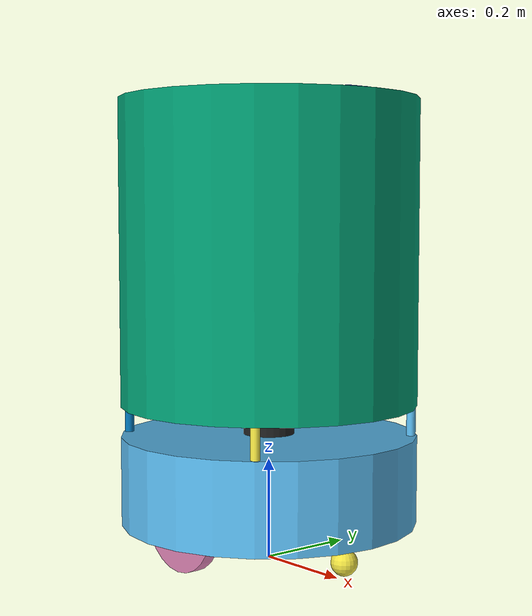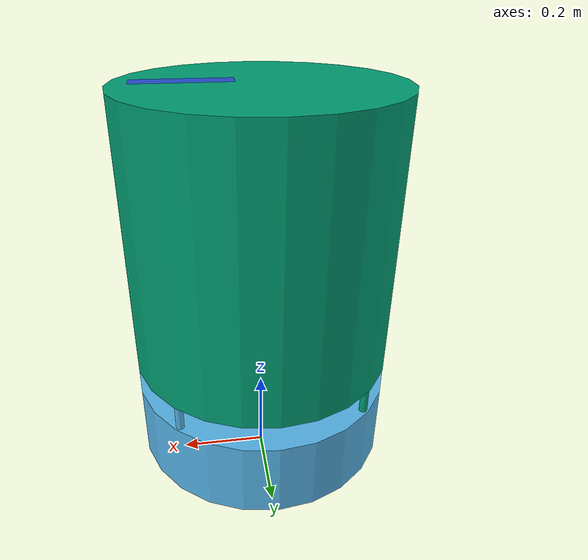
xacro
<?xml version='1.0'?>

<robot name="myrobot" xmlns:xacro="http://www.ros.org/wiki/xacro">

  <xacro:include filename="$(find karbot_description)/urdf/materials.xacro" />
  <xacro:include filename="$(find karbot_description)/urdf/karbot.gazebo" />
  <xacro:include filename="$(find karbot_description)/urdf/macros.xacro" />

<link name="base_footprint"/>

<joint name="base_joint" type="fixed">
    <parent link="base_footprint"/>
    <child link="base_link" />
    <origin xyz="0 0 0.010" rpy="0 0 0"/>
  </joint>

  <link name="base_link">
    <visual>
      <geometry>
        <cylinder length="0.176" radius="0.295051"/>
      </geometry>
      <origin rpy="0 0 0" xyz="0 0 0.153988"/>
    </visual>

    <collision name= "collison_base_link">
      <origin rpy="0 0 0" xyz="0 0 0.153988"/>
      <geometry>
        <cylinder length="0.176" radius="0.295051"/>
      </geometry>
    </collision>
    <inertial>
      <mass value="1"/>
      <origin rpy="0 0 0" xyz="0 0 0.153988"/>
      <xacro:cylinder_inertia mass="1" r="0.295051" l="0.176" />
    </inertial>
  </link>

  <link name="upper_chassis">
    <visual>
      <geometry>
        <cylinder length="0.601382" radius="0.295051"/>
      </geometry>
      <origin rpy="0 0 0" xyz="0 0 0"/>
    </visual>

    <collision name = "collision_upper_chassis">
      <geometry>
        <cylinder length="0.601382" radius="0.295051"/>
      </geometry>
    </collision>
  </link>

  <joint name="upper_chassis_hinge" type="fixed">
    <parent link="base_link"/>
    <child link="upper_chassis"/>
    <origin rpy="0 0 0" xyz="0 0 0.602679"/>
  </joint>

  <link name="front_caster">
    <visual>
      <geometry>
        <sphere radius="0.025925"/>
      </geometry>
      <origin rpy="0 0 0" xyz="0 0 0"/>
    </visual>

    <collision>
      <geometry>
        <sphere radius="0.025925"/>
      </geometry>
      <surface>
        <friction>
          <ode>
            <mu>0</mu>
            <mu2>0</mu2>
            <slip1>1.0</slip1>
            <slip2>1.0</slip2>
          </ode>
        </friction>
      </surface>
    </collision>
    <inertial>
      <mass value="0.2"/>
      <inertia ixx="0.004481" ixy="0.0" ixz="0.0" iyy="0.004481" iyz="0.0" izz="0.004481"/>
    </inertial>
  </link>

  <joint name="front_caster_hinge" type="fixed">
    <parent link="base_link"/>
    <child link="front_caster"/>
    <origin xyz="0.220488 0 0.025"/>
  </joint>

  <link name="rear_caster">
    <visual>
      <geometry>
        <sphere radius="0.026925"/>
      </geometry>
      <origin rpy="0 0 0" xyz="0 0 0"/>
    </visual>

    <collision>
      <geometry>
        <sphere radius="0.025925"/>
      </geometry>
      <surface>
        <friction>
          <ode>
            <mu>0</mu>
            <mu2>0</mu2>
            <slip1>1.0</slip1>
            <slip2>1.0</slip2>
          </ode>
        </friction>
      </surface>
    </collision>
    <inertial>
      <mass value="0.2"/>
      <inertia ixx="0.001" ixy="0.0" ixz="0.0" iyy="0.001" iyz="0.0" izz="0.001"/>
    </inertial>
  </link>

  <joint name="rear_caster_hinge" type="fixed">
    <parent link="base_link"/>
    <child link="rear_caster"/>
    <origin xyz="-0.220488 0 0.026925"/>
  </joint>

  <link name="left_wheel">
    <visual>
      <geometry>
        <cylinder length=".025400" radius="0.102173"/>
      </geometry>
      <origin rpy="0 1.5707 1.5707" xyz="0 0 0"/>
    </visual>

    <collision>
      <origin rpy="0 1.5707 1.5707" xyz="0 0 0"/>
      <geometry>
        <cylinder length=".025400" radius="0.102173"/>
      </geometry>
    </collision>
    <inertial>
      <mass value="0.3"/>
      <xacro:cylinder_inertia mass="0.3" r="0.102173" l="0.0254" />
    </inertial>
  </link>

  <joint name="left_wheel_hinge" type="continuous">
    <parent link="base_link"/>
    <child link="left_wheel"/>
     <origin rpy="0 0 0" xyz="0 0.213950 0.102173"/>
     <axis xyz="0 1 0"/>
     <limit effort="10000" velocity="1000"/>
     <joint_properties damping="1.0" friction="1.0"/>
  </joint>

  <link name="right_wheel">
    <visual>
      <geometry>
        <cylinder length=".025400" radius="0.102173"/>
      </geometry>
      <origin rpy="0 1.5707 1.5707" xyz="0 0 0"/>
    </visual>

    <collision>
      <origin rpy="0 1.5707 1.5707" xyz="0 0 0"/>
      <geometry>
        <cylinder length=".025400" radius="0.102173"/>
      </geometry>
    </collision>
    <inertial>
      <mass value="0.3"/>
      <xacro:cylinder_inertia mass="0.3" r="0.102173" l="0.0254" />
    </inertial>
  </link>

  <joint name="right_wheel_hinge" type="continuous">
    <parent link="base_link"/>
    <child link="right_wheel"/>
     <origin rpy="0 0 0" xyz="0 -0.213950 0.102173"/>
    <axis xyz="0 1 0"/>
    <limit effort="10000" velocity="1000"/>
    <joint_properties damping="1.0" friction="1.0"/>
  </joint>

  <link name="base_scan">
    <visual>
      <geometry>
        <cylinder length="0.055" radius="0.0508"/>
      </geometry>
      <origin rpy="0 0 0" xyz="0 0 0"/>
    </visual>

    <collision>
      <geometry>
        <cylinder length="0.055" radius="0.0508"/>
      </geometry>
    </collision>
    <inertial>
      <mass value="0.2"/>
      <xacro:cylinder_inertia mass="0.2" r="0.0508" l="0.055" />
    </inertial>
  </link>

  <joint name="scan_joint" type="fixed">
    <parent link="base_link"/>
    <child link="base_scan"/>
    <origin xyz="0 0 0.269488"/>
  </joint>

  <link name="arrow">
    <visual>
      <geometry>
       <box size="0.2 0.05 0.000010"/>
      </geometry>
      <origin rpy="0 0 0" xyz="0 0 0"/>
    <material name="blue"/>
    </visual>

  </link>

  <joint name="arrow_hinge" type="fixed">
    <parent link="base_link"/>
    <child link="arrow"/>
    <origin rpy="0 0 0" xyz="0.15 0 0.91"/>
  </joint>

<xacro:macro name="front_pillars" params="prefix reflect">
    <link name="front_${prefix}_pillar">
        <visual>
            <geometry>
             <cylinder length="0.075" radius="0.009"/>
            </geometry>
            <origin xyz="0 0 0" rpy="0 0 0"/>
        </visual>
        <collision>
            <geometry>
             <cylinder length="0.075" radius="0.009"/>
            </geometry>
            <origin xyz="0 0 0" rpy="0 0 0"/>
        </collision>
    </link>

   <joint name="front_${prefix}_pillar_hinge" type="fixed">
       <parent link="base_link"/>
       <child link="front_${prefix}_pillar"/>
       <origin xyz="${reflect*0.20} 0.20 0.269488" />
    </joint>
</xacro:macro>
<xacro:front_pillars prefix="right" reflect="1" />
<xacro:front_pillars prefix="left" reflect="-1" />

<xacro:macro name="rear_pillars" params="prefix reflect">
    <link name="rear_${prefix}_pillar">
        <visual>
            <geometry>
             <cylinder length="0.075" radius="0.009"/>
            </geometry>
            <origin xyz="0 0 0" rpy="0 0 0"/>
        </visual>
        <collision>
            <geometry>
             <cylinder length="0.075" radius="0.009"/>
            </geometry>
            <origin xyz="0 0 0" rpy="0 0 0"/>
        </collision>
    </link>

   <joint name="rear_${prefix}_pillar_hinge" type="fixed">
       <parent link="base_link"/>
       <child link="rear_${prefix}_pillar"/>
       <origin xyz="${reflect*0.20} -0.20 0.269488" />
    </joint>
</xacro:macro>
<xacro:rear_pillars prefix="right" reflect="1" />
<xacro:rear_pillars prefix="left" reflect="-1" />

</robot>

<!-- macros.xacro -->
<robot>
    <macro name="link_wheel" params="name">
        <link name="${name}">
            <inertial>
              <mass value="0.2"/>
              <origin rpy="0 1.5707 1.5707" xyz="0 0 0"/>
              <inertia ixx="0.000526666666667" ixy="0" ixz="0" iyy="0.000526666666667" iyz="0" izz="0.001"/>
            </inertial>
            <collision name="link_right_wheel_collision">
              <origin rpy="0 1.5707 1.5707" xyz="0 0 0"/>
              <geometry>
                <cylinder length="0.04" radius="0.1"/>
              </geometry>
            </collision>
            <visual name="${name}_visual">
              <origin rpy="0 1.5707 1.5707" xyz="0 0 0"/>
              <geometry>
                <cylinder length="0.04" radius="0.1"/>
              </geometry>
            </visual>
        </link>
    </macro>

    <macro name="joint_wheel" params="name child origin_xyz">
      <joint name="${name}" type="continuous">
        <origin rpy="0 0 0" xyz="${origin_xyz}"/>
        <child link="${child}"/>
        <parent link="link_chassis"/>
        <axis rpy="0 0 0" xyz="0 1 0"/>
        <limit effort="10000" velocity="1000"/>
        <joint_properties damping="1.0" friction="1.0"/>
      </joint>
    </macro>

    <macro name="cylinder_inertia" params="mass r l">
      <inertia  ixx="${mass*(3*r*r+l*l)/12}" ixy = "0" ixz = "0"
                iyy="${mass*(3*r*r+l*l)/12}" iyz = "0"
                izz="${mass*(r*r)/2}" />
    </macro>
</robot>
